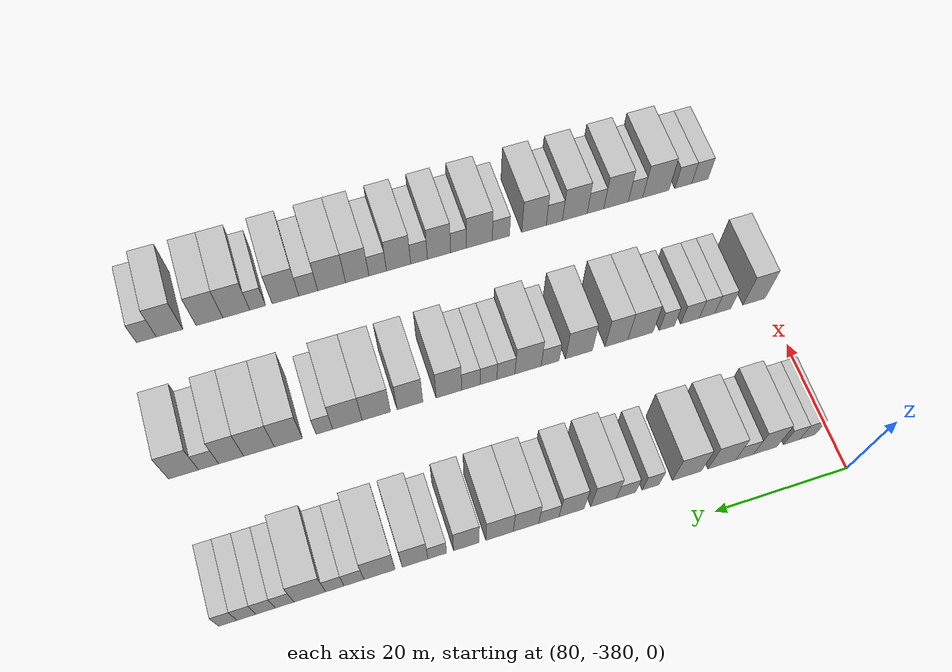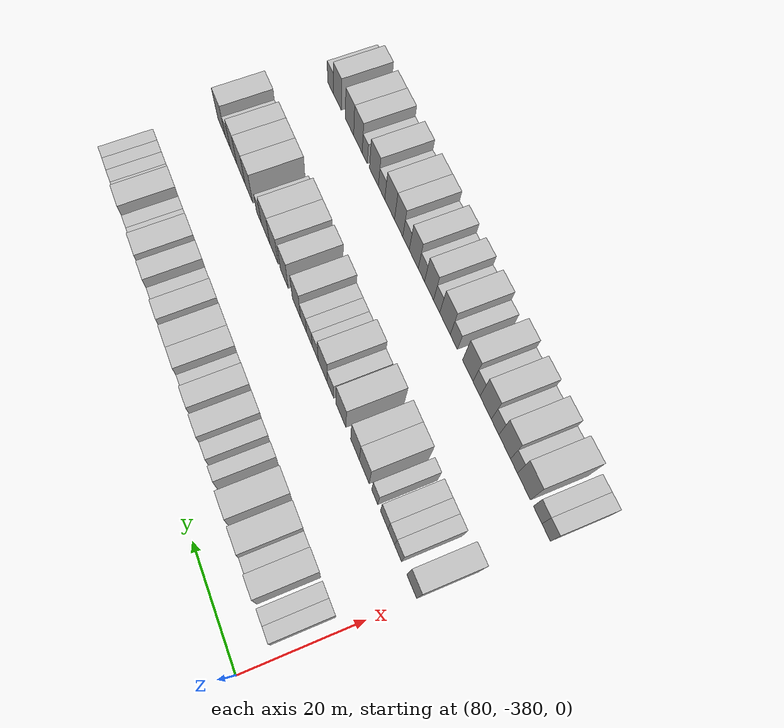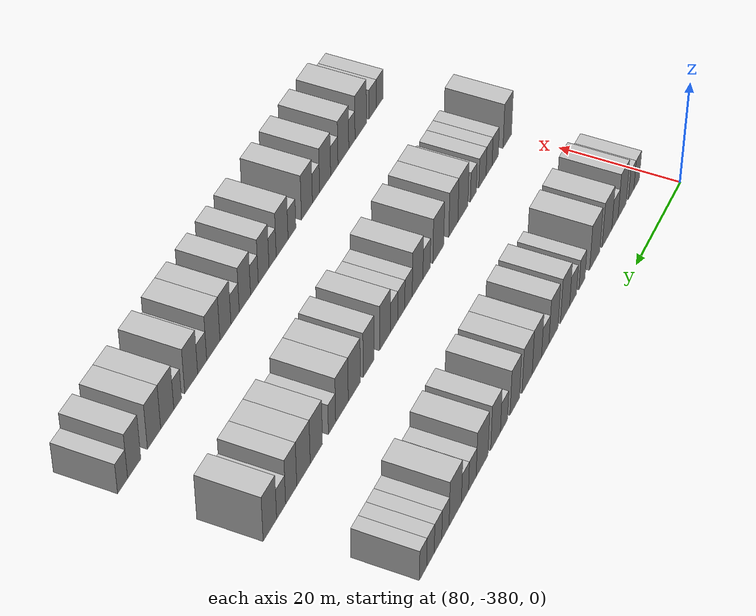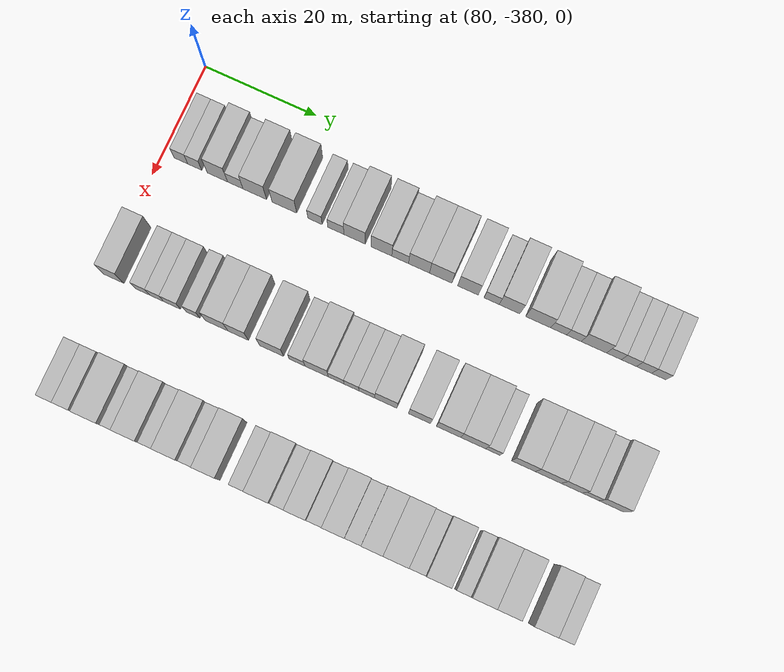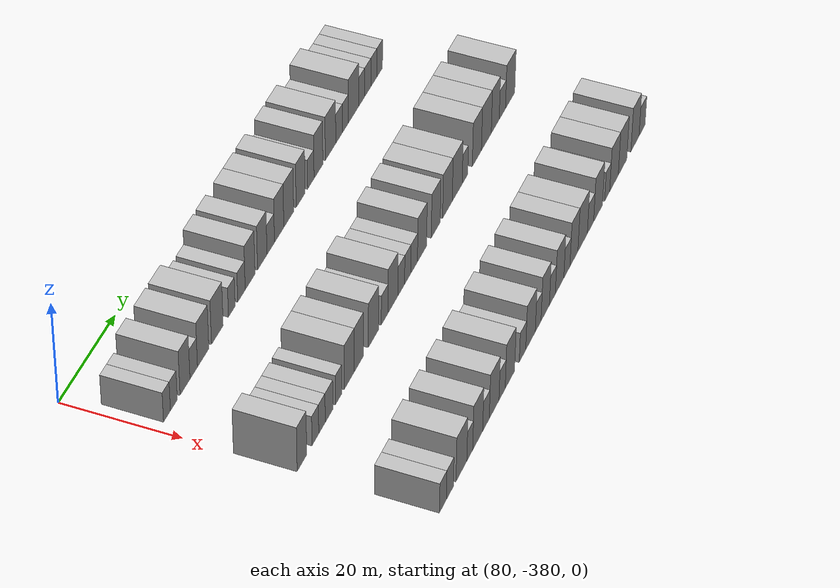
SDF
<sdf version="1.6">
 <world name="default">
  <model name="building_580">
   <static>1</static>
   <pose>91.0000 -376.7606 0 0.000000 0.000000 0.000000</pose>
   <link name="link">
    <pose>0 0 3.00 0 0 0</pose>
    <collision name="collision"><geometry><box><size>10.0000 2.4788 6.0000</size></box></geometry></collision>
    <visual name="visual">
     <cast_shadows>0</cast_shadows>
     <geometry><box><size>10.0000 2.4788 6.0000</size></box></geometry>
     <material>
      <script>
       <uri>model://HANNAS_wall/materials/scripts</uri>
       <uri>model://HANNAS_wall/materials/textures</uri>
       <name>vrc/HANNAS_wall</name>
      </script>
     </material>
    </visual>
   </link>
  </model>
  <model name="building_581">
   <static>1</static>
   <pose>91.0000 -374.2791 0 0.000000 0.000000 0.000000</pose>
   <link name="link">
    <pose>0 0 3.00 0 0 0</pose>
    <collision name="collision"><geometry><box><size>10.0000 2.4841 6.0000</size></box></geometry></collision>
    <visual name="visual">
     <cast_shadows>0</cast_shadows>
     <geometry><box><size>10.0000 2.4841 6.0000</size></box></geometry>
     <material>
      <script>
       <uri>model://HANNAS_wall/materials/scripts</uri>
       <uri>model://HANNAS_wall/materials/textures</uri>
       <name>vrc/HANNAS_wall</name>
      </script>
     </material>
    </visual>
   </link>
  </model>
  <model name="building_582">
   <static>1</static>
   <pose>91.0000 -370.2173 0 0.000000 0.000000 0.000000</pose>
   <link name="link">
    <pose>0 0 4.50 0 0 0</pose>
    <collision name="collision"><geometry><box><size>10.0000 3.6395 9.0000</size></box></geometry></collision>
    <visual name="visual">
     <cast_shadows>0</cast_shadows>
     <geometry><box><size>10.0000 3.6395 9.0000</size></box></geometry>
     <material>
      <script>
       <uri>model://HANNAS_wall/materials/scripts</uri>
       <uri>model://HANNAS_wall/materials/textures</uri>
       <name>vrc/HANNAS_wall</name>
      </script>
     </material>
    </visual>
   </link>
  </model>
  <model name="building_583">
   <static>1</static>
   <pose>91.0000 -367.0186 0 0.000000 0.000000 0.000000</pose>
   <link name="link">
    <pose>0 0 3.00 0 0 0</pose>
    <collision name="collision"><geometry><box><size>10.0000 2.7579 6.0000</size></box></geometry></collision>
    <visual name="visual">
     <cast_shadows>0</cast_shadows>
     <geometry><box><size>10.0000 2.7579 6.0000</size></box></geometry>
     <material>
      <script>
       <uri>model://HANNAS_wall/materials/scripts</uri>
       <uri>model://HANNAS_wall/materials/textures</uri>
       <name>vrc/HANNAS_wall</name>
      </script>
     </material>
    </visual>
   </link>
  </model>
  <model name="building_584">
   <static>1</static>
   <pose>91.0000 -363.5366 0 0.000000 0.000000 0.000000</pose>
   <link name="link">
    <pose>0 0 4.50 0 0 0</pose>
    <collision name="collision"><geometry><box><size>10.0000 4.2061 9.0000</size></box></geometry></collision>
    <visual name="visual">
     <cast_shadows>0</cast_shadows>
     <geometry><box><size>10.0000 4.2061 9.0000</size></box></geometry>
     <material>
      <script>
       <uri>model://HANNAS_wall/materials/scripts</uri>
       <uri>model://HANNAS_wall/materials/textures</uri>
       <name>vrc/HANNAS_wall</name>
      </script>
     </material>
    </visual>
   </link>
  </model>
  <model name="building_585">
   <static>1</static>
   <pose>91.0000 -358.2431 0 0.000000 0.000000 0.000000</pose>
   <link name="link">
    <pose>0 0 4.50 0 0 0</pose>
    <collision name="collision"><geometry><box><size>10.0000 4.3810 9.0000</size></box></geometry></collision>
    <visual name="visual">
     <cast_shadows>0</cast_shadows>
     <geometry><box><size>10.0000 4.3810 9.0000</size></box></geometry>
     <material>
      <script>
       <uri>model://HANNAS_wall/materials/scripts</uri>
       <uri>model://HANNAS_wall/materials/textures</uri>
       <name>vrc/HANNAS_wall</name>
      </script>
     </material>
    </visual>
   </link>
  </model>
  <model name="building_586">
   <static>1</static>
   <pose>91.0000 -352.7833 0 0.000000 0.000000 0.000000</pose>
   <link name="link">
    <pose>0 0 3.00 0 0 0</pose>
    <collision name="collision"><geometry><box><size>10.0000 2.5386 6.0000</size></box></geometry></collision>
    <visual name="visual">
     <cast_shadows>0</cast_shadows>
     <geometry><box><size>10.0000 2.5386 6.0000</size></box></geometry>
     <material>
      <script>
       <uri>model://HANNAS_wall/materials/scripts</uri>
       <uri>model://HANNAS_wall/materials/textures</uri>
       <name>vrc/HANNAS_wall</name>
      </script>
     </material>
    </visual>
   </link>
  </model>
  <model name="building_587">
   <static>1</static>
   <pose>91.0000 -349.0770 0 0.000000 0.000000 0.000000</pose>
   <link name="link">
    <pose>0 0 3.00 0 0 0</pose>
    <collision name="collision"><geometry><box><size>10.0000 2.8740 6.0000</size></box></geometry></collision>
    <visual name="visual">
     <cast_shadows>0</cast_shadows>
     <geometry><box><size>10.0000 2.8740 6.0000</size></box></geometry>
     <material>
      <script>
       <uri>model://HANNAS_wall/materials/scripts</uri>
       <uri>model://HANNAS_wall/materials/textures</uri>
       <name>vrc/HANNAS_wall</name>
      </script>
     </material>
    </visual>
   </link>
  </model>
  <model name="building_588">
   <static>1</static>
   <pose>91.0000 -345.7464 0 0.000000 0.000000 0.000000</pose>
   <link name="link">
    <pose>0 0 4.50 0 0 0</pose>
    <collision name="collision"><geometry><box><size>10.0000 3.7874 9.0000</size></box></geometry></collision>
    <visual name="visual">
     <cast_shadows>0</cast_shadows>
     <geometry><box><size>10.0000 3.7874 9.0000</size></box></geometry>
     <material>
      <script>
       <uri>model://HANNAS_wall/materials/scripts</uri>
       <uri>model://HANNAS_wall/materials/textures</uri>
       <name>vrc/HANNAS_wall</name>
      </script>
     </material>
    </visual>
   </link>
  </model>
  <model name="building_589">
   <static>1</static>
   <pose>91.0000 -341.0054 0 0.000000 0.000000 0.000000</pose>
   <link name="link">
    <pose>0 0 4.50 0 0 0</pose>
    <collision name="collision"><geometry><box><size>10.0000 3.6947 9.0000</size></box></geometry></collision>
    <visual name="visual">
     <cast_shadows>0</cast_shadows>
     <geometry><box><size>10.0000 3.6947 9.0000</size></box></geometry>
     <material>
      <script>
       <uri>model://HANNAS_wall/materials/scripts</uri>
       <uri>model://HANNAS_wall/materials/textures</uri>
       <name>vrc/HANNAS_wall</name>
      </script>
     </material>
    </visual>
   </link>
  </model>
  <model name="building_590">
   <static>1</static>
   <pose>91.0000 -337.6820 0 0.000000 0.000000 0.000000</pose>
   <link name="link">
    <pose>0 0 3.00 0 0 0</pose>
    <collision name="collision"><geometry><box><size>10.0000 2.9520 6.0000</size></box></geometry></collision>
    <visual name="visual">
     <cast_shadows>0</cast_shadows>
     <geometry><box><size>10.0000 2.9520 6.0000</size></box></geometry>
     <material>
      <script>
       <uri>model://HANNAS_wall/materials/scripts</uri>
       <uri>model://HANNAS_wall/materials/textures</uri>
       <name>vrc/HANNAS_wall</name>
      </script>
     </material>
    </visual>
   </link>
  </model>
  <model name="building_591">
   <static>1</static>
   <pose>91.0000 -334.3464 0 0.000000 0.000000 0.000000</pose>
   <link name="link">
    <pose>0 0 4.50 0 0 0</pose>
    <collision name="collision"><geometry><box><size>10.0000 3.7192 9.0000</size></box></geometry></collision>
    <visual name="visual">
     <cast_shadows>0</cast_shadows>
     <geometry><box><size>10.0000 3.7192 9.0000</size></box></geometry>
     <material>
      <script>
       <uri>model://HANNAS_wall/materials/scripts</uri>
       <uri>model://HANNAS_wall/materials/textures</uri>
       <name>vrc/HANNAS_wall</name>
      </script>
     </material>
    </visual>
   </link>
  </model>
  <model name="building_592">
   <static>1</static>
   <pose>91.0000 -330.5115 0 0.000000 0.000000 0.000000</pose>
   <link name="link">
    <pose>0 0 4.50 0 0 0</pose>
    <collision name="collision"><geometry><box><size>10.0000 3.9507 9.0000</size></box></geometry></collision>
    <visual name="visual">
     <cast_shadows>0</cast_shadows>
     <geometry><box><size>10.0000 3.9507 9.0000</size></box></geometry>
     <material>
      <script>
       <uri>model://HANNAS_wall/materials/scripts</uri>
       <uri>model://HANNAS_wall/materials/textures</uri>
       <name>vrc/HANNAS_wall</name>
      </script>
     </material>
    </visual>
   </link>
  </model>
  <model name="building_593">
   <static>1</static>
   <pose>91.0000 -325.7156 0 0.000000 0.000000 0.000000</pose>
   <link name="link">
    <pose>0 0 4.50 0 0 0</pose>
    <collision name="collision"><geometry><box><size>10.0000 3.6412 9.0000</size></box></geometry></collision>
    <visual name="visual">
     <cast_shadows>0</cast_shadows>
     <geometry><box><size>10.0000 3.6412 9.0000</size></box></geometry>
     <material>
      <script>
       <uri>model://HANNAS_wall/materials/scripts</uri>
       <uri>model://HANNAS_wall/materials/textures</uri>
       <name>vrc/HANNAS_wall</name>
      </script>
     </material>
    </visual>
   </link>
  </model>
  <model name="building_594">
   <static>1</static>
   <pose>91.0000 -321.5634 0 0.000000 0.000000 0.000000</pose>
   <link name="link">
    <pose>0 0 3.00 0 0 0</pose>
    <collision name="collision"><geometry><box><size>10.0000 2.6632 6.0000</size></box></geometry></collision>
    <visual name="visual">
     <cast_shadows>0</cast_shadows>
     <geometry><box><size>10.0000 2.6632 6.0000</size></box></geometry>
     <material>
      <script>
       <uri>model://HANNAS_wall/materials/scripts</uri>
       <uri>model://HANNAS_wall/materials/textures</uri>
       <name>vrc/HANNAS_wall</name>
      </script>
     </material>
    </visual>
   </link>
  </model>
  <model name="building_595">
   <static>1</static>
   <pose>91.0000 -318.4105 0 0.000000 0.000000 0.000000</pose>
   <link name="link">
    <pose>0 0 4.50 0 0 0</pose>
    <collision name="collision"><geometry><box><size>10.0000 3.6426 9.0000</size></box></geometry></collision>
    <visual name="visual">
     <cast_shadows>0</cast_shadows>
     <geometry><box><size>10.0000 3.6426 9.0000</size></box></geometry>
     <material>
      <script>
       <uri>model://HANNAS_wall/materials/scripts</uri>
       <uri>model://HANNAS_wall/materials/textures</uri>
       <name>vrc/HANNAS_wall</name>
      </script>
     </material>
    </visual>
   </link>
  </model>
  <model name="building_596">
   <static>1</static>
   <pose>91.0000 -313.4000 0 0.000000 0.000000 0.000000</pose>
   <link name="link">
    <pose>0 0 4.50 0 0 0</pose>
    <collision name="collision"><geometry><box><size>10.0000 4.3784 9.0000</size></box></geometry></collision>
    <visual name="visual">
     <cast_shadows>0</cast_shadows>
     <geometry><box><size>10.0000 4.3784 9.0000</size></box></geometry>
     <material>
      <script>
       <uri>model://HANNAS_wall/materials/scripts</uri>
       <uri>model://HANNAS_wall/materials/textures</uri>
       <name>vrc/HANNAS_wall</name>
      </script>
     </material>
    </visual>
   </link>
  </model>
  <model name="building_597">
   <static>1</static>
   <pose>91.0000 -309.8229 0 0.000000 0.000000 0.000000</pose>
   <link name="link">
    <pose>0 0 3.00 0 0 0</pose>
    <collision name="collision"><geometry><box><size>10.0000 2.7758 6.0000</size></box></geometry></collision>
    <visual name="visual">
     <cast_shadows>0</cast_shadows>
     <geometry><box><size>10.0000 2.7758 6.0000</size></box></geometry>
     <material>
      <script>
       <uri>model://HANNAS_wall/materials/scripts</uri>
       <uri>model://HANNAS_wall/materials/textures</uri>
       <name>vrc/HANNAS_wall</name>
      </script>
     </material>
    </visual>
   </link>
  </model>
  <model name="building_598">
   <static>1</static>
   <pose>91.0000 -307.1508 0 0.000000 0.000000 0.000000</pose>
   <link name="link">
    <pose>0 0 3.00 0 0 0</pose>
    <collision name="collision"><geometry><box><size>10.0000 2.5684 6.0000</size></box></geometry></collision>
    <visual name="visual">
     <cast_shadows>0</cast_shadows>
     <geometry><box><size>10.0000 2.5684 6.0000</size></box></geometry>
     <material>
      <script>
       <uri>model://HANNAS_wall/materials/scripts</uri>
       <uri>model://HANNAS_wall/materials/textures</uri>
       <name>vrc/HANNAS_wall</name>
      </script>
     </material>
    </visual>
   </link>
  </model>
  <model name="building_599">
   <static>1</static>
   <pose>91.0000 -303.6656 0 0.000000 0.000000 0.000000</pose>
   <link name="link">
    <pose>0 0 4.50 0 0 0</pose>
    <collision name="collision"><geometry><box><size>10.0000 4.4020 9.0000</size></box></geometry></collision>
    <visual name="visual">
     <cast_shadows>0</cast_shadows>
     <geometry><box><size>10.0000 4.4020 9.0000</size></box></geometry>
     <material>
      <script>
       <uri>model://HANNAS_wall/materials/scripts</uri>
       <uri>model://HANNAS_wall/materials/textures</uri>
       <name>vrc/HANNAS_wall</name>
      </script>
     </material>
    </visual>
   </link>
  </model>
  <model name="building_600">
   <static>1</static>
   <pose>91.0000 -300.1757 0 0.000000 0.000000 0.000000</pose>
   <link name="link">
    <pose>0 0 3.00 0 0 0</pose>
    <collision name="collision"><geometry><box><size>10.0000 2.5778 6.0000</size></box></geometry></collision>
    <visual name="visual">
     <cast_shadows>0</cast_shadows>
     <geometry><box><size>10.0000 2.5778 6.0000</size></box></geometry>
     <material>
      <script>
       <uri>model://HANNAS_wall/materials/scripts</uri>
       <uri>model://HANNAS_wall/materials/textures</uri>
       <name>vrc/HANNAS_wall</name>
      </script>
     </material>
    </visual>
   </link>
  </model>
  <model name="building_601">
   <static>1</static>
   <pose>91.0000 -297.5766 0 0.000000 0.000000 0.000000</pose>
   <link name="link">
    <pose>0 0 3.00 0 0 0</pose>
    <collision name="collision"><geometry><box><size>10.0000 2.6204 6.0000</size></box></geometry></collision>
    <visual name="visual">
     <cast_shadows>0</cast_shadows>
     <geometry><box><size>10.0000 2.6204 6.0000</size></box></geometry>
     <material>
      <script>
       <uri>model://HANNAS_wall/materials/scripts</uri>
       <uri>model://HANNAS_wall/materials/textures</uri>
       <name>vrc/HANNAS_wall</name>
      </script>
     </material>
    </visual>
   </link>
  </model>
  <model name="building_602">
   <static>1</static>
   <pose>91.0000 -294.9646 0 0.000000 0.000000 0.000000</pose>
   <link name="link">
    <pose>0 0 3.00 0 0 0</pose>
    <collision name="collision"><geometry><box><size>10.0000 2.6035 6.0000</size></box></geometry></collision>
    <visual name="visual">
     <cast_shadows>0</cast_shadows>
     <geometry><box><size>10.0000 2.6035 6.0000</size></box></geometry>
     <material>
      <script>
       <uri>model://HANNAS_wall/materials/scripts</uri>
       <uri>model://HANNAS_wall/materials/textures</uri>
       <name>vrc/HANNAS_wall</name>
      </script>
     </material>
    </visual>
   </link>
  </model>
  <model name="building_603">
   <static>1</static>
   <pose>91.0000 -292.4177 0 0.000000 0.000000 0.000000</pose>
   <link name="link">
    <pose>0 0 3.00 0 0 0</pose>
    <collision name="collision"><geometry><box><size>10.0000 2.4904 6.0000</size></box></geometry></collision>
    <visual name="visual">
     <cast_shadows>0</cast_shadows>
     <geometry><box><size>10.0000 2.4904 6.0000</size></box></geometry>
     <material>
      <script>
       <uri>model://HANNAS_wall/materials/scripts</uri>
       <uri>model://HANNAS_wall/materials/textures</uri>
       <name>vrc/HANNAS_wall</name>
      </script>
     </material>
    </visual>
   </link>
  </model>
  <model name="building_770">
   <static>1</static>
   <pose>113.0000 -378.1971 0 0.000000 0.000000 0.000000</pose>
   <link name="link">
    <pose>0 0 4.50 0 0 0</pose>
    <collision name="collision"><geometry><box><size>10.0000 3.6057 9.0000</size></box></geometry></collision>
    <visual name="visual">
     <cast_shadows>0</cast_shadows>
     <geometry><box><size>10.0000 3.6057 9.0000</size></box></geometry>
     <material>
      <script>
       <uri>model://HANNAS_wall/materials/scripts</uri>
       <uri>model://HANNAS_wall/materials/textures</uri>
       <name>vrc/HANNAS_wall</name>
      </script>
     </material>
    </visual>
   </link>
  </model>
  <model name="building_771">
   <static>1</static>
   <pose>113.0000 -373.0921 0 0.000000 0.000000 0.000000</pose>
   <link name="link">
    <pose>0 0 3.00 0 0 0</pose>
    <collision name="collision"><geometry><box><size>10.0000 2.6044 6.0000</size></box></geometry></collision>
    <visual name="visual">
     <cast_shadows>0</cast_shadows>
     <geometry><box><size>10.0000 2.6044 6.0000</size></box></geometry>
     <material>
      <script>
       <uri>model://HANNAS_wall/materials/scripts</uri>
       <uri>model://HANNAS_wall/materials/textures</uri>
       <name>vrc/HANNAS_wall</name>
      </script>
     </material>
    </visual>
   </link>
  </model>
  <model name="building_772">
   <static>1</static>
   <pose>113.0000 -370.5402 0 0.000000 0.000000 0.000000</pose>
   <link name="link">
    <pose>0 0 3.00 0 0 0</pose>
    <collision name="collision"><geometry><box><size>10.0000 2.4993 6.0000</size></box></geometry></collision>
    <visual name="visual">
     <cast_shadows>0</cast_shadows>
     <geometry><box><size>10.0000 2.4993 6.0000</size></box></geometry>
     <material>
      <script>
       <uri>model://HANNAS_wall/materials/scripts</uri>
       <uri>model://HANNAS_wall/materials/textures</uri>
       <name>vrc/HANNAS_wall</name>
      </script>
     </material>
    </visual>
   </link>
  </model>
  <model name="building_773">
   <static>1</static>
   <pose>113.0000 -367.8064 0 0.000000 0.000000 0.000000</pose>
   <link name="link">
    <pose>0 0 3.00 0 0 0</pose>
    <collision name="collision"><geometry><box><size>10.0000 2.9684 6.0000</size></box></geometry></collision>
    <visual name="visual">
     <cast_shadows>0</cast_shadows>
     <geometry><box><size>10.0000 2.9684 6.0000</size></box></geometry>
     <material>
      <script>
       <uri>model://HANNAS_wall/materials/scripts</uri>
       <uri>model://HANNAS_wall/materials/textures</uri>
       <name>vrc/HANNAS_wall</name>
      </script>
     </material>
    </visual>
   </link>
  </model>
  <model name="building_774">
   <static>1</static>
   <pose>113.0000 -364.1086 0 0.000000 0.000000 0.000000</pose>
   <link name="link">
    <pose>0 0 3.00 0 0 0</pose>
    <collision name="collision"><geometry><box><size>10.0000 2.4272 6.0000</size></box></geometry></collision>
    <visual name="visual">
     <cast_shadows>0</cast_shadows>
     <geometry><box><size>10.0000 2.4272 6.0000</size></box></geometry>
     <material>
      <script>
       <uri>model://HANNAS_wall/materials/scripts</uri>
       <uri>model://HANNAS_wall/materials/textures</uri>
       <name>vrc/HANNAS_wall</name>
      </script>
     </material>
    </visual>
   </link>
  </model>
  <model name="building_775">
   <static>1</static>
   <pose>113.0000 -359.8982 0 0.000000 0.000000 0.000000</pose>
   <link name="link">
    <pose>0 0 4.50 0 0 0</pose>
    <collision name="collision"><geometry><box><size>10.0000 3.9935 9.0000</size></box></geometry></collision>
    <visual name="visual">
     <cast_shadows>0</cast_shadows>
     <geometry><box><size>10.0000 3.9935 9.0000</size></box></geometry>
     <material>
      <script>
       <uri>model://HANNAS_wall/materials/scripts</uri>
       <uri>model://HANNAS_wall/materials/textures</uri>
       <name>vrc/HANNAS_wall</name>
      </script>
     </material>
    </visual>
   </link>
  </model>
  <model name="building_776">
   <static>1</static>
   <pose>113.0000 -356.1005 0 0.000000 0.000000 0.000000</pose>
   <link name="link">
    <pose>0 0 4.50 0 0 0</pose>
    <collision name="collision"><geometry><box><size>10.0000 3.6019 9.0000</size></box></geometry></collision>
    <visual name="visual">
     <cast_shadows>0</cast_shadows>
     <geometry><box><size>10.0000 3.6019 9.0000</size></box></geometry>
     <material>
      <script>
       <uri>model://HANNAS_wall/materials/scripts</uri>
       <uri>model://HANNAS_wall/materials/textures</uri>
       <name>vrc/HANNAS_wall</name>
      </script>
     </material>
    </visual>
   </link>
  </model>
  <model name="building_777">
   <static>1</static>
   <pose>113.0000 -350.1958 0 0.000000 0.000000 0.000000</pose>
   <link name="link">
    <pose>0 0 4.50 0 0 0</pose>
    <collision name="collision"><geometry><box><size>10.0000 4.2076 9.0000</size></box></geometry></collision>
    <visual name="visual">
     <cast_shadows>0</cast_shadows>
     <geometry><box><size>10.0000 4.2076 9.0000</size></box></geometry>
     <material>
      <script>
       <uri>model://HANNAS_wall/materials/scripts</uri>
       <uri>model://HANNAS_wall/materials/textures</uri>
       <name>vrc/HANNAS_wall</name>
      </script>
     </material>
    </visual>
   </link>
  </model>
  <model name="building_778">
   <static>1</static>
   <pose>113.0000 -345.7001 0 0.000000 0.000000 0.000000</pose>
   <link name="link">
    <pose>0 0 3.00 0 0 0</pose>
    <collision name="collision"><geometry><box><size>10.0000 2.7838 6.0000</size></box></geometry></collision>
    <visual name="visual">
     <cast_shadows>0</cast_shadows>
     <geometry><box><size>10.0000 2.7838 6.0000</size></box></geometry>
     <material>
      <script>
       <uri>model://HANNAS_wall/materials/scripts</uri>
       <uri>model://HANNAS_wall/materials/textures</uri>
       <name>vrc/HANNAS_wall</name>
      </script>
     </material>
    </visual>
   </link>
  </model>
  <model name="building_779">
   <static>1</static>
   <pose>113.0000 -342.2810 0 0.000000 0.000000 0.000000</pose>
   <link name="link">
    <pose>0 0 4.50 0 0 0</pose>
    <collision name="collision"><geometry><box><size>10.0000 4.0544 9.0000</size></box></geometry></collision>
    <visual name="visual">
     <cast_shadows>0</cast_shadows>
     <geometry><box><size>10.0000 4.0544 9.0000</size></box></geometry>
     <material>
      <script>
       <uri>model://HANNAS_wall/materials/scripts</uri>
       <uri>model://HANNAS_wall/materials/textures</uri>
       <name>vrc/HANNAS_wall</name>
      </script>
     </material>
    </visual>
   </link>
  </model>
  <model name="building_780">
   <static>1</static>
   <pose>113.0000 -338.8687 0 0.000000 0.000000 0.000000</pose>
   <link name="link">
    <pose>0 0 3.00 0 0 0</pose>
    <collision name="collision"><geometry><box><size>10.0000 2.7702 6.0000</size></box></geometry></collision>
    <visual name="visual">
     <cast_shadows>0</cast_shadows>
     <geometry><box><size>10.0000 2.7702 6.0000</size></box></geometry>
     <material>
      <script>
       <uri>model://HANNAS_wall/materials/scripts</uri>
       <uri>model://HANNAS_wall/materials/textures</uri>
       <name>vrc/HANNAS_wall</name>
      </script>
     </material>
    </visual>
   </link>
  </model>
  <model name="building_781">
   <static>1</static>
   <pose>113.0000 -336.1880 0 0.000000 0.000000 0.000000</pose>
   <link name="link">
    <pose>0 0 3.00 0 0 0</pose>
    <collision name="collision"><geometry><box><size>10.0000 2.5911 6.0000</size></box></geometry></collision>
    <visual name="visual">
     <cast_shadows>0</cast_shadows>
     <geometry><box><size>10.0000 2.5911 6.0000</size></box></geometry>
     <material>
      <script>
       <uri>model://HANNAS_wall/materials/scripts</uri>
       <uri>model://HANNAS_wall/materials/textures</uri>
       <name>vrc/HANNAS_wall</name>
      </script>
     </material>
    </visual>
   </link>
  </model>
  <model name="building_782">
   <static>1</static>
   <pose>113.0000 -333.4920 0 0.000000 0.000000 0.000000</pose>
   <link name="link">
    <pose>0 0 3.00 0 0 0</pose>
    <collision name="collision"><geometry><box><size>10.0000 2.8010 6.0000</size></box></geometry></collision>
    <visual name="visual">
     <cast_shadows>0</cast_shadows>
     <geometry><box><size>10.0000 2.8010 6.0000</size></box></geometry>
     <material>
      <script>
       <uri>model://HANNAS_wall/materials/scripts</uri>
       <uri>model://HANNAS_wall/materials/textures</uri>
       <name>vrc/HANNAS_wall</name>
      </script>
     </material>
    </visual>
   </link>
  </model>
  <model name="building_783">
   <static>1</static>
   <pose>113.0000 -330.1597 0 0.000000 0.000000 0.000000</pose>
   <link name="link">
    <pose>0 0 4.50 0 0 0</pose>
    <collision name="collision"><geometry><box><size>10.0000 3.8636 9.0000</size></box></geometry></collision>
    <visual name="visual">
     <cast_shadows>0</cast_shadows>
     <geometry><box><size>10.0000 3.8636 9.0000</size></box></geometry>
     <material>
      <script>
       <uri>model://HANNAS_wall/materials/scripts</uri>
       <uri>model://HANNAS_wall/materials/textures</uri>
       <name>vrc/HANNAS_wall</name>
      </script>
     </material>
    </visual>
   </link>
  </model>
  <model name="building_784">
   <static>1</static>
   <pose>113.0000 -324.2971 0 0.000000 0.000000 0.000000</pose>
   <link name="link">
    <pose>0 0 4.50 0 0 0</pose>
    <collision name="collision"><geometry><box><size>10.0000 3.8617 9.0000</size></box></geometry></collision>
    <visual name="visual">
     <cast_shadows>0</cast_shadows>
     <geometry><box><size>10.0000 3.8617 9.0000</size></box></geometry>
     <material>
      <script>
       <uri>model://HANNAS_wall/materials/scripts</uri>
       <uri>model://HANNAS_wall/materials/textures</uri>
       <name>vrc/HANNAS_wall</name>
      </script>
     </material>
    </visual>
   </link>
  </model>
  <model name="building_785">
   <static>1</static>
   <pose>113.0000 -319.2502 0 0.000000 0.000000 0.000000</pose>
   <link name="link">
    <pose>0 0 4.50 0 0 0</pose>
    <collision name="collision"><geometry><box><size>10.0000 4.2321 9.0000</size></box></geometry></collision>
    <visual name="visual">
     <cast_shadows>0</cast_shadows>
     <geometry><box><size>10.0000 4.2321 9.0000</size></box></geometry>
     <material>
      <script>
       <uri>model://HANNAS_wall/materials/scripts</uri>
       <uri>model://HANNAS_wall/materials/textures</uri>
       <name>vrc/HANNAS_wall</name>
      </script>
     </material>
    </visual>
   </link>
  </model>
  <model name="building_786">
   <static>1</static>
   <pose>113.0000 -314.9586 0 0.000000 0.000000 0.000000</pose>
   <link name="link">
    <pose>0 0 4.50 0 0 0</pose>
    <collision name="collision"><geometry><box><size>10.0000 4.3511 9.0000</size></box></geometry></collision>
    <visual name="visual">
     <cast_shadows>0</cast_shadows>
     <geometry><box><size>10.0000 4.3511 9.0000</size></box></geometry>
     <material>
      <script>
       <uri>model://HANNAS_wall/materials/scripts</uri>
       <uri>model://HANNAS_wall/materials/textures</uri>
       <name>vrc/HANNAS_wall</name>
      </script>
     </material>
    </visual>
   </link>
  </model>
  <model name="building_787">
   <static>1</static>
   <pose>113.0000 -311.5476 0 0.000000 0.000000 0.000000</pose>
   <link name="link">
    <pose>0 0 3.00 0 0 0</pose>
    <collision name="collision"><geometry><box><size>10.0000 2.4709 6.0000</size></box></geometry></collision>
    <visual name="visual">
     <cast_shadows>0</cast_shadows>
     <geometry><box><size>10.0000 2.4709 6.0000</size></box></geometry>
     <material>
      <script>
       <uri>model://HANNAS_wall/materials/scripts</uri>
       <uri>model://HANNAS_wall/materials/textures</uri>
       <name>vrc/HANNAS_wall</name>
      </script>
     </material>
    </visual>
   </link>
  </model>
  <model name="building_788">
   <static>1</static>
   <pose>113.0000 -306.2640 0 0.000000 0.000000 0.000000</pose>
   <link name="link">
    <pose>0 0 4.50 0 0 0</pose>
    <collision name="collision"><geometry><box><size>10.0000 4.0963 9.0000</size></box></geometry></collision>
    <visual name="visual">
     <cast_shadows>0</cast_shadows>
     <geometry><box><size>10.0000 4.0963 9.0000</size></box></geometry>
     <material>
      <script>
       <uri>model://HANNAS_wall/materials/scripts</uri>
       <uri>model://HANNAS_wall/materials/textures</uri>
       <name>vrc/HANNAS_wall</name>
      </script>
     </material>
    </visual>
   </link>
  </model>
  <model name="building_789">
   <static>1</static>
   <pose>113.0000 -301.9892 0 0.000000 0.000000 0.000000</pose>
   <link name="link">
    <pose>0 0 4.50 0 0 0</pose>
    <collision name="collision"><geometry><box><size>10.0000 4.4533 9.0000</size></box></geometry></collision>
    <visual name="visual">
     <cast_shadows>0</cast_shadows>
     <geometry><box><size>10.0000 4.4533 9.0000</size></box></geometry>
     <material>
      <script>
       <uri>model://HANNAS_wall/materials/scripts</uri>
       <uri>model://HANNAS_wall/materials/textures</uri>
       <name>vrc/HANNAS_wall</name>
      </script>
     </material>
    </visual>
   </link>
  </model>
  <model name="building_790">
   <static>1</static>
   <pose>113.0000 -297.9550 0 0.000000 0.000000 0.000000</pose>
   <link name="link">
    <pose>0 0 4.50 0 0 0</pose>
    <collision name="collision"><geometry><box><size>10.0000 3.6151 9.0000</size></box></geometry></collision>
    <visual name="visual">
     <cast_shadows>0</cast_shadows>
     <geometry><box><size>10.0000 3.6151 9.0000</size></box></geometry>
     <material>
      <script>
       <uri>model://HANNAS_wall/materials/scripts</uri>
       <uri>model://HANNAS_wall/materials/textures</uri>
       <name>vrc/HANNAS_wall</name>
      </script>
     </material>
    </visual>
   </link>
  </model>
  <model name="building_791">
   <static>1</static>
   <pose>113.0000 -294.7015 0 0.000000 0.000000 0.000000</pose>
   <link name="link">
    <pose>0 0 3.00 0 0 0</pose>
    <collision name="collision"><geometry><box><size>10.0000 2.8921 6.0000</size></box></geometry></collision>
    <visual name="visual">
     <cast_shadows>0</cast_shadows>
     <geometry><box><size>10.0000 2.8921 6.0000</size></box></geometry>
     <material>
      <script>
       <uri>model://HANNAS_wall/materials/scripts</uri>
       <uri>model://HANNAS_wall/materials/textures</uri>
       <name>vrc/HANNAS_wall</name>
      </script>
     </material>
    </visual>
   </link>
  </model>
  <model name="building_792">
   <static>1</static>
   <pose>113.0000 -291.1153 0 0.000000 0.000000 0.000000</pose>
   <link name="link">
    <pose>0 0 4.50 0 0 0</pose>
    <collision name="collision"><geometry><box><size>10.0000 4.2803 9.0000</size></box></geometry></collision>
    <visual name="visual">
     <cast_shadows>0</cast_shadows>
     <geometry><box><size>10.0000 4.2803 9.0000</size></box></geometry>
     <material>
      <script>
       <uri>model://HANNAS_wall/materials/scripts</uri>
       <uri>model://HANNAS_wall/materials/textures</uri>
       <name>vrc/HANNAS_wall</name>
      </script>
     </material>
    </visual>
   </link>
  </model>
  <model name="building_959">
   <static>1</static>
   <pose>135.0000 -378.6105 0 0.000000 0.000000 0.000000</pose>
   <link name="link">
    <pose>0 0 3.00 0 0 0</pose>
    <collision name="collision"><geometry><box><size>10.0000 2.7790 6.0000</size></box></geometry></collision>
    <visual name="visual">
     <cast_shadows>0</cast_shadows>
     <geometry><box><size>10.0000 2.7790 6.0000</size></box></geometry>
     <material>
      <script>
       <uri>model://HANNAS_wall/materials/scripts</uri>
       <uri>model://HANNAS_wall/materials/textures</uri>
       <name>vrc/HANNAS_wall</name>
      </script>
     </material>
    </visual>
   </link>
  </model>
  <model name="building_960">
   <static>1</static>
   <pose>135.0000 -375.7967 0 0.000000 0.000000 0.000000</pose>
   <link name="link">
    <pose>0 0 3.00 0 0 0</pose>
    <collision name="collision"><geometry><box><size>10.0000 2.8488 6.0000</size></box></geometry></collision>
    <visual name="visual">
     <cast_shadows>0</cast_shadows>
     <geometry><box><size>10.0000 2.8488 6.0000</size></box></geometry>
     <material>
      <script>
       <uri>model://HANNAS_wall/materials/scripts</uri>
       <uri>model://HANNAS_wall/materials/textures</uri>
       <name>vrc/HANNAS_wall</name>
      </script>
     </material>
    </visual>
   </link>
  </model>
  <model name="building_961">
   <static>1</static>
   <pose>135.0000 -371.1509 0 0.000000 0.000000 0.000000</pose>
   <link name="link">
    <pose>0 0 4.50 0 0 0</pose>
    <collision name="collision"><geometry><box><size>10.0000 4.4428 9.0000</size></box></geometry></collision>
    <visual name="visual">
     <cast_shadows>0</cast_shadows>
     <geometry><box><size>10.0000 4.4428 9.0000</size></box></geometry>
     <material>
      <script>
       <uri>model://HANNAS_wall/materials/scripts</uri>
       <uri>model://HANNAS_wall/materials/textures</uri>
       <name>vrc/HANNAS_wall</name>
      </script>
     </material>
    </visual>
   </link>
  </model>
  <model name="building_962">
   <static>1</static>
   <pose>135.0000 -367.7250 0 0.000000 0.000000 0.000000</pose>
   <link name="link">
    <pose>0 0 3.00 0 0 0</pose>
    <collision name="collision"><geometry><box><size>10.0000 2.4091 6.0000</size></box></geometry></collision>
    <visual name="visual">
     <cast_shadows>0</cast_shadows>
     <geometry><box><size>10.0000 2.4091 6.0000</size></box></geometry>
     <material>
      <script>
       <uri>model://HANNAS_wall/materials/scripts</uri>
       <uri>model://HANNAS_wall/materials/textures</uri>
       <name>vrc/HANNAS_wall</name>
      </script>
     </material>
    </visual>
   </link>
  </model>
  <model name="building_963">
   <static>1</static>
   <pose>135.0000 -364.4609 0 0.000000 0.000000 0.000000</pose>
   <link name="link">
    <pose>0 0 4.50 0 0 0</pose>
    <collision name="collision"><geometry><box><size>10.0000 4.1190 9.0000</size></box></geometry></collision>
    <visual name="visual">
     <cast_shadows>0</cast_shadows>
     <geometry><box><size>10.0000 4.1190 9.0000</size></box></geometry>
     <material>
      <script>
       <uri>model://HANNAS_wall/materials/scripts</uri>
       <uri>model://HANNAS_wall/materials/textures</uri>
       <name>vrc/HANNAS_wall</name>
      </script>
     </material>
    </visual>
   </link>
  </model>
  <model name="building_964">
   <static>1</static>
   <pose>135.0000 -361.0279 0 0.000000 0.000000 0.000000</pose>
   <link name="link">
    <pose>0 0 3.00 0 0 0</pose>
    <collision name="collision"><geometry><box><size>10.0000 2.7471 6.0000</size></box></geometry></collision>
    <visual name="visual">
     <cast_shadows>0</cast_shadows>
     <geometry><box><size>10.0000 2.7471 6.0000</size></box></geometry>
     <material>
      <script>
       <uri>model://HANNAS_wall/materials/scripts</uri>
       <uri>model://HANNAS_wall/materials/textures</uri>
       <name>vrc/HANNAS_wall</name>
      </script>
     </material>
    </visual>
   </link>
  </model>
  <model name="building_965">
   <static>1</static>
   <pose>135.0000 -357.6040 0 0.000000 0.000000 0.000000</pose>
   <link name="link">
    <pose>0 0 4.50 0 0 0</pose>
    <collision name="collision"><geometry><box><size>10.0000 4.1005 9.0000</size></box></geometry></collision>
    <visual name="visual">
     <cast_shadows>0</cast_shadows>
     <geometry><box><size>10.0000 4.1005 9.0000</size></box></geometry>
     <material>
      <script>
       <uri>model://HANNAS_wall/materials/scripts</uri>
       <uri>model://HANNAS_wall/materials/textures</uri>
       <name>vrc/HANNAS_wall</name>
      </script>
     </material>
    </visual>
   </link>
  </model>
  <model name="building_966">
   <static>1</static>
   <pose>135.0000 -354.2294 0 0.000000 0.000000 0.000000</pose>
   <link name="link">
    <pose>0 0 3.00 0 0 0</pose>
    <collision name="collision"><geometry><box><size>10.0000 2.6487 6.0000</size></box></geometry></collision>
    <visual name="visual">
     <cast_shadows>0</cast_shadows>
     <geometry><box><size>10.0000 2.6487 6.0000</size></box></geometry>
     <material>
      <script>
       <uri>model://HANNAS_wall/materials/scripts</uri>
       <uri>model://HANNAS_wall/materials/textures</uri>
       <name>vrc/HANNAS_wall</name>
      </script>
     </material>
    </visual>
   </link>
  </model>
  <model name="building_967">
   <static>1</static>
   <pose>135.0000 -350.8979 0 0.000000 0.000000 0.000000</pose>
   <link name="link">
    <pose>0 0 4.50 0 0 0</pose>
    <collision name="collision"><geometry><box><size>10.0000 4.0144 9.0000</size></box></geometry></collision>
    <visual name="visual">
     <cast_shadows>0</cast_shadows>
     <geometry><box><size>10.0000 4.0144 9.0000</size></box></geometry>
     <material>
      <script>
       <uri>model://HANNAS_wall/materials/scripts</uri>
       <uri>model://HANNAS_wall/materials/textures</uri>
       <name>vrc/HANNAS_wall</name>
      </script>
     </material>
    </visual>
   </link>
  </model>
  <model name="building_968">
   <static>1</static>
   <pose>135.0000 -345.4932 0 0.000000 0.000000 0.000000</pose>
   <link name="link">
    <pose>0 0 3.00 0 0 0</pose>
    <collision name="collision"><geometry><box><size>10.0000 2.7950 6.0000</size></box></geometry></collision>
    <visual name="visual">
     <cast_shadows>0</cast_shadows>
     <geometry><box><size>10.0000 2.7950 6.0000</size></box></geometry>
     <material>
      <script>
       <uri>model://HANNAS_wall/materials/scripts</uri>
       <uri>model://HANNAS_wall/materials/textures</uri>
       <name>vrc/HANNAS_wall</name>
      </script>
     </material>
    </visual>
   </link>
  </model>
  <model name="building_969">
   <static>1</static>
   <pose>135.0000 -341.9966 0 0.000000 0.000000 0.000000</pose>
   <link name="link">
    <pose>0 0 4.50 0 0 0</pose>
    <collision name="collision"><geometry><box><size>10.0000 4.1981 9.0000</size></box></geometry></collision>
    <visual name="visual">
     <cast_shadows>0</cast_shadows>
     <geometry><box><size>10.0000 4.1981 9.0000</size></box></geometry>
     <material>
      <script>
       <uri>model://HANNAS_wall/materials/scripts</uri>
       <uri>model://HANNAS_wall/materials/textures</uri>
       <name>vrc/HANNAS_wall</name>
      </script>
     </material>
    </visual>
   </link>
  </model>
  <model name="building_970">
   <static>1</static>
   <pose>135.0000 -338.6386 0 0.000000 0.000000 0.000000</pose>
   <link name="link">
    <pose>0 0 3.00 0 0 0</pose>
    <collision name="collision"><geometry><box><size>10.0000 2.5178 6.0000</size></box></geometry></collision>
    <visual name="visual">
     <cast_shadows>0</cast_shadows>
     <geometry><box><size>10.0000 2.5178 6.0000</size></box></geometry>
     <material>
      <script>
       <uri>model://HANNAS_wall/materials/scripts</uri>
       <uri>model://HANNAS_wall/materials/textures</uri>
       <name>vrc/HANNAS_wall</name>
      </script>
     </material>
    </visual>
   </link>
  </model>
  <model name="building_971">
   <static>1</static>
   <pose>135.0000 -335.5228 0 0.000000 0.000000 0.000000</pose>
   <link name="link">
    <pose>0 0 4.50 0 0 0</pose>
    <collision name="collision"><geometry><box><size>10.0000 3.7137 9.0000</size></box></geometry></collision>
    <visual name="visual">
     <cast_shadows>0</cast_shadows>
     <geometry><box><size>10.0000 3.7137 9.0000</size></box></geometry>
     <material>
      <script>
       <uri>model://HANNAS_wall/materials/scripts</uri>
       <uri>model://HANNAS_wall/materials/textures</uri>
       <name>vrc/HANNAS_wall</name>
      </script>
     </material>
    </visual>
   </link>
  </model>
  <model name="building_972">
   <static>1</static>
   <pose>135.0000 -332.3382 0 0.000000 0.000000 0.000000</pose>
   <link name="link">
    <pose>0 0 3.00 0 0 0</pose>
    <collision name="collision"><geometry><box><size>10.0000 2.6555 6.0000</size></box></geometry></collision>
    <visual name="visual">
     <cast_shadows>0</cast_shadows>
     <geometry><box><size>10.0000 2.6555 6.0000</size></box></geometry>
     <material>
      <script>
       <uri>model://HANNAS_wall/materials/scripts</uri>
       <uri>model://HANNAS_wall/materials/textures</uri>
       <name>vrc/HANNAS_wall</name>
      </script>
     </material>
    </visual>
   </link>
  </model>
  <model name="building_973">
   <static>1</static>
   <pose>135.0000 -329.0938 0 0.000000 0.000000 0.000000</pose>
   <link name="link">
    <pose>0 0 4.50 0 0 0</pose>
    <collision name="collision"><geometry><box><size>10.0000 3.8334 9.0000</size></box></geometry></collision>
    <visual name="visual">
     <cast_shadows>0</cast_shadows>
     <geometry><box><size>10.0000 3.8334 9.0000</size></box></geometry>
     <material>
      <script>
       <uri>model://HANNAS_wall/materials/scripts</uri>
       <uri>model://HANNAS_wall/materials/textures</uri>
       <name>vrc/HANNAS_wall</name>
      </script>
     </material>
    </visual>
   </link>
  </model>
  <model name="building_974">
   <static>1</static>
   <pose>135.0000 -325.7830 0 0.000000 0.000000 0.000000</pose>
   <link name="link">
    <pose>0 0 3.00 0 0 0</pose>
    <collision name="collision"><geometry><box><size>10.0000 2.7880 6.0000</size></box></geometry></collision>
    <visual name="visual">
     <cast_shadows>0</cast_shadows>
     <geometry><box><size>10.0000 2.7880 6.0000</size></box></geometry>
     <material>
      <script>
       <uri>model://HANNAS_wall/materials/scripts</uri>
       <uri>model://HANNAS_wall/materials/textures</uri>
       <name>vrc/HANNAS_wall</name>
      </script>
     </material>
    </visual>
   </link>
  </model>
  <model name="building_975">
   <static>1</static>
   <pose>135.0000 -322.5613 0 0.000000 0.000000 0.000000</pose>
   <link name="link">
    <pose>0 0 4.50 0 0 0</pose>
    <collision name="collision"><geometry><box><size>10.0000 3.6555 9.0000</size></box></geometry></collision>
    <visual name="visual">
     <cast_shadows>0</cast_shadows>
     <geometry><box><size>10.0000 3.6555 9.0000</size></box></geometry>
     <material>
      <script>
       <uri>model://HANNAS_wall/materials/scripts</uri>
       <uri>model://HANNAS_wall/materials/textures</uri>
       <name>vrc/HANNAS_wall</name>
      </script>
     </material>
    </visual>
   </link>
  </model>
  <model name="building_976">
   <static>1</static>
   <pose>135.0000 -318.5570 0 0.000000 0.000000 0.000000</pose>
   <link name="link">
    <pose>0 0 4.50 0 0 0</pose>
    <collision name="collision"><geometry><box><size>10.0000 4.3531 9.0000</size></box></geometry></collision>
    <visual name="visual">
     <cast_shadows>0</cast_shadows>
     <geometry><box><size>10.0000 4.3531 9.0000</size></box></geometry>
     <material>
      <script>
       <uri>model://HANNAS_wall/materials/scripts</uri>
       <uri>model://HANNAS_wall/materials/textures</uri>
       <name>vrc/HANNAS_wall</name>
      </script>
     </material>
    </visual>
   </link>
  </model>
  <model name="building_977">
   <static>1</static>
   <pose>135.0000 -314.9200 0 0.000000 0.000000 0.000000</pose>
   <link name="link">
    <pose>0 0 3.00 0 0 0</pose>
    <collision name="collision"><geometry><box><size>10.0000 2.9207 6.0000</size></box></geometry></collision>
    <visual name="visual">
     <cast_shadows>0</cast_shadows>
     <geometry><box><size>10.0000 2.9207 6.0000</size></box></geometry>
     <material>
      <script>
       <uri>model://HANNAS_wall/materials/scripts</uri>
       <uri>model://HANNAS_wall/materials/textures</uri>
       <name>vrc/HANNAS_wall</name>
      </script>
     </material>
    </visual>
   </link>
  </model>
  <model name="building_978">
   <static>1</static>
   <pose>135.0000 -311.3828 0 0.000000 0.000000 0.000000</pose>
   <link name="link">
    <pose>0 0 4.50 0 0 0</pose>
    <collision name="collision"><geometry><box><size>10.0000 4.1539 9.0000</size></box></geometry></collision>
    <visual name="visual">
     <cast_shadows>0</cast_shadows>
     <geometry><box><size>10.0000 4.1539 9.0000</size></box></geometry>
     <material>
      <script>
       <uri>model://HANNAS_wall/materials/scripts</uri>
       <uri>model://HANNAS_wall/materials/textures</uri>
       <name>vrc/HANNAS_wall</name>
      </script>
     </material>
    </visual>
   </link>
  </model>
  <model name="building_979">
   <static>1</static>
   <pose>135.0000 -307.0930 0 0.000000 0.000000 0.000000</pose>
   <link name="link">
    <pose>0 0 3.00 0 0 0</pose>
    <collision name="collision"><geometry><box><size>10.0000 2.4256 6.0000</size></box></geometry></collision>
    <visual name="visual">
     <cast_shadows>0</cast_shadows>
     <geometry><box><size>10.0000 2.4256 6.0000</size></box></geometry>
     <material>
      <script>
       <uri>model://HANNAS_wall/materials/scripts</uri>
       <uri>model://HANNAS_wall/materials/textures</uri>
       <name>vrc/HANNAS_wall</name>
      </script>
     </material>
    </visual>
   </link>
  </model>
  <model name="building_980">
   <static>1</static>
   <pose>135.0000 -303.8309 0 0.000000 0.000000 0.000000</pose>
   <link name="link">
    <pose>0 0 4.50 0 0 0</pose>
    <collision name="collision"><geometry><box><size>10.0000 4.0986 9.0000</size></box></geometry></collision>
    <visual name="visual">
     <cast_shadows>0</cast_shadows>
     <geometry><box><size>10.0000 4.0986 9.0000</size></box></geometry>
     <material>
      <script>
       <uri>model://HANNAS_wall/materials/scripts</uri>
       <uri>model://HANNAS_wall/materials/textures</uri>
       <name>vrc/HANNAS_wall</name>
      </script>
     </material>
    </visual>
   </link>
  </model>
  <model name="building_981">
   <static>1</static>
   <pose>135.0000 -299.7345 0 0.000000 0.000000 0.000000</pose>
   <link name="link">
    <pose>0 0 4.50 0 0 0</pose>
    <collision name="collision"><geometry><box><size>10.0000 4.0942 9.0000</size></box></geometry></collision>
    <visual name="visual">
     <cast_shadows>0</cast_shadows>
     <geometry><box><size>10.0000 4.0942 9.0000</size></box></geometry>
     <material>
      <script>
       <uri>model://HANNAS_wall/materials/scripts</uri>
       <uri>model://HANNAS_wall/materials/textures</uri>
       <name>vrc/HANNAS_wall</name>
      </script>
     </material>
    </visual>
   </link>
  </model>
  <model name="building_982">
   <static>1</static>
   <pose>135.0000 -293.6970 0 0.000000 0.000000 0.000000</pose>
   <link name="link">
    <pose>0 0 4.50 0 0 0</pose>
    <collision name="collision"><geometry><box><size>10.0000 3.9809 9.0000</size></box></geometry></collision>
    <visual name="visual">
     <cast_shadows>0</cast_shadows>
     <geometry><box><size>10.0000 3.9809 9.0000</size></box></geometry>
     <material>
      <script>
       <uri>model://HANNAS_wall/materials/scripts</uri>
       <uri>model://HANNAS_wall/materials/textures</uri>
       <name>vrc/HANNAS_wall</name>
      </script>
     </material>
    </visual>
   </link>
  </model>
  <model name="building_983">
   <static>1</static>
   <pose>135.0000 -290.2097 0 0.000000 0.000000 0.000000</pose>
   <link name="link">
    <pose>0 0 3.00 0 0 0</pose>
    <collision name="collision"><geometry><box><size>10.0000 2.9935 6.0000</size></box></geometry></collision>
    <visual name="visual">
     <cast_shadows>0</cast_shadows>
     <geometry><box><size>10.0000 2.9935 6.0000</size></box></geometry>
     <material>
      <script>
       <uri>model://HANNAS_wall/materials/scripts</uri>
       <uri>model://HANNAS_wall/materials/textures</uri>
       <name>vrc/HANNAS_wall</name>
      </script>
     </material>
    </visual>
   </link>
  </model>
 </world>
</sdf>
